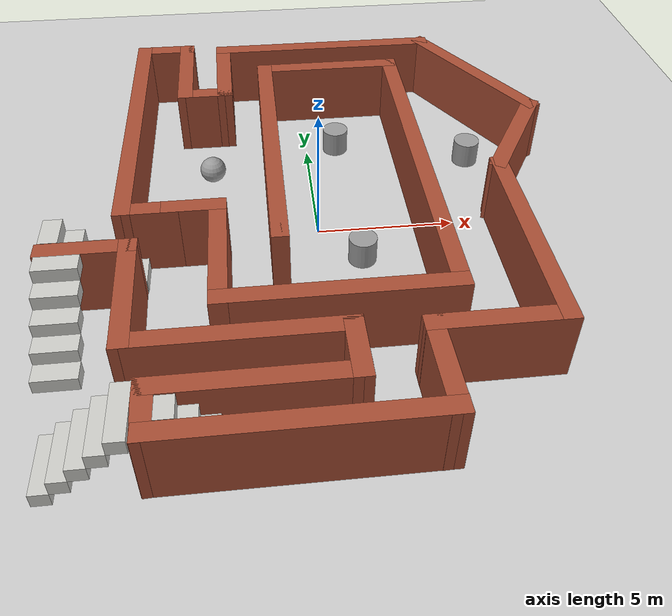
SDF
<sdf version="1.7">
 <world name="default">
  <light name="sun" type="directional">
   <pose>0 0 10 0 -0 0</pose>
   <diffuse>0.8 0.8 0.8 1</diffuse>
   <specular>0.2 0.2 0.2 1</specular>
   <attenuation>
    <range>1000</range>
    <constant>0.9</constant>
    <linear>0.01</linear>
    <quadratic>0.001</quadratic>
   </attenuation>
   <direction>-0.5 0.1 -0.9</direction>
   <spot><inner_angle>0</inner_angle><outer_angle>0</outer_angle><falloff>0</falloff></spot>
  </light>
  <model name="ground_plane">
   <static>1</static>
   <link name="link">
    <collision name="collision">
     <geometry><plane><normal>0 0 1</normal><size>100 100</size></plane></geometry>
     <surface>
      <contact><collide_bitmask>65535</collide_bitmask></contact>
      <friction><ode><mu>100</mu><mu2>50</mu2></ode></friction>
     </surface>
    </collision>
    <visual name="visual">
     <cast_shadows>0</cast_shadows>
     <geometry><plane><normal>0 0 1</normal><size>100 100</size></plane></geometry>
     <material>
      <script><uri>file://media/materials/scripts/gazebo.material</uri><name>Gazebo/Grey</name></script>
     </material>
    </visual>
   </link>
  </model>
  <gravity>0 0 -9.8</gravity>
  <magnetic_field>6e-06 2.3e-05 -4.2e-05</magnetic_field>
  <atmosphere type="adiabatic"/>
  <physics type="ode">
   <max_step_size>0.001</max_step_size>
   <real_time_factor>1</real_time_factor>
   <real_time_update_rate>1000</real_time_update_rate>
  </physics>
  <scene><ambient>0.4 0.4 0.4 1</ambient><background>0.7 0.7 0.7 1</background><shadows>1</shadows></scene>
  <spherical_coordinates>
   <surface_model>EARTH_WGS84</surface_model>
   <latitude_deg>0</latitude_deg>
   <longitude_deg>0</longitude_deg>
   <elevation>0</elevation>
   <heading_deg>0</heading_deg>
  </spherical_coordinates>
  <model name="env1">
   <pose>-0.009799 0.06639 0 0 -0 0</pose>
   <link name="Stairs_12">
    <visual name="Stairs_12_Visual_0">
     <pose>-8.49588 -6.1434 0.25 0 0 -3.14159</pose>
     <geometry><box><size>1.43535 0.656 0.5</size></box></geometry>
     <material>
      <script><uri>file://media/materials/scripts/gazebo.material</uri><name>Gazebo/CeilingTiled</name></script>
      <ambient>1 1 1 1</ambient>
     </material>
     <meta><layer>0</layer></meta>
    </visual>
    <collision name="Stairs_12_Collision_0">
     <geometry><box><size>1.43535 0.656 0.5</size></box></geometry>
     <pose>-8.49588 -6.1434 0.25 0 0 -3.14159</pose>
    </collision>
    <visual name="Stairs_12_Visual_1">
     <pose>-8.49588 -5.4874 0.75 0 0 -3.14159</pose>
     <geometry><box><size>1.43535 0.656 0.5</size></box></geometry>
     <material>
      <script><uri>file://media/materials/scripts/gazebo.material</uri><name>Gazebo/CeilingTiled</name></script>
      <ambient>1 1 1 1</ambient>
     </material>
     <meta><layer>0</layer></meta>
    </visual>
    <collision name="Stairs_12_Collision_1">
     <geometry><box><size>1.43535 0.656 0.5</size></box></geometry>
     <pose>-8.49588 -5.4874 0.75 0 0 -3.14159</pose>
    </collision>
    <visual name="Stairs_12_Visual_2">
     <pose>-8.49588 -4.8314 1.25 0 0 -3.14159</pose>
     <geometry><box><size>1.43535 0.656 0.5</size></box></geometry>
     <material>
      <script><uri>file://media/materials/scripts/gazebo.material</uri><name>Gazebo/CeilingTiled</name></script>
      <ambient>1 1 1 1</ambient>
     </material>
     <meta><layer>0</layer></meta>
    </visual>
    <collision name="Stairs_12_Collision_2">
     <geometry><box><size>1.43535 0.656 0.5</size></box></geometry>
     <pose>-8.49588 -4.8314 1.25 0 0 -3.14159</pose>
    </collision>
    <visual name="Stairs_12_Visual_3">
     <pose>-8.49588 -4.1754 1.75 0 0 -3.14159</pose>
     <geometry><box><size>1.43535 0.656 0.5</size></box></geometry>
     <material>
      <script><uri>file://media/materials/scripts/gazebo.material</uri><name>Gazebo/CeilingTiled</name></script>
      <ambient>1 1 1 1</ambient>
     </material>
     <meta><layer>0</layer></meta>
    </visual>
    <collision name="Stairs_12_Collision_3">
     <geometry><box><size>1.43535 0.656 0.5</size></box></geometry>
     <pose>-8.49588 -4.1754 1.75 0 0 -3.14159</pose>
    </collision>
    <visual name="Stairs_12_Visual_4">
     <pose>-8.49588 -3.5194 2.25 0 0 -3.14159</pose>
     <geometry><box><size>1.43535 0.656 0.5</size></box></geometry>
     <material>
      <script><uri>file://media/materials/scripts/gazebo.material</uri><name>Gazebo/CeilingTiled</name></script>
      <ambient>1 1 1 1</ambient>
     </material>
     <meta><layer>0</layer></meta>
    </visual>
    <collision name="Stairs_12_Collision_4">
     <geometry><box><size>1.43535 0.656 0.5</size></box></geometry>
     <pose>-8.49588 -3.5194 2.25 0 0 -3.14159</pose>
    </collision>
   </link>
   <link name="Stairs_14">
    <visual name="Stairs_14_Visual_0">
     <pose>-8.31245 -9.26996 0.25 0 -0 1.5708</pose>
     <geometry><box><size>1.85785 0.565722 0.5</size></box></geometry>
     <material>
      <script><uri>file://media/materials/scripts/gazebo.material</uri><name>Gazebo/CeilingTiled</name></script>
      <ambient>1 1 1 1</ambient>
     </material>
     <meta><layer>0</layer></meta>
    </visual>
    <collision name="Stairs_14_Collision_0">
     <geometry><box><size>1.85785 0.565722 0.5</size></box></geometry>
     <pose>-8.31245 -9.26996 0.25 0 -0 1.5708</pose>
    </collision>
    <visual name="Stairs_14_Visual_1">
     <pose>-7.74673 -9.26996 0.75 0 -0 1.5708</pose>
     <geometry><box><size>1.85785 0.565722 0.5</size></box></geometry>
     <material>
      <script><uri>file://media/materials/scripts/gazebo.material</uri><name>Gazebo/CeilingTiled</name></script>
      <ambient>1 1 1 1</ambient>
     </material>
     <meta><layer>0</layer></meta>
    </visual>
    <collision name="Stairs_14_Collision_1">
     <geometry><box><size>1.85785 0.565722 0.5</size></box></geometry>
     <pose>-7.74673 -9.26996 0.75 0 -0 1.5708</pose>
    </collision>
    <visual name="Stairs_14_Visual_2">
     <pose>-7.181 -9.26996 1.25 0 -0 1.5708</pose>
     <geometry><box><size>1.85785 0.565722 0.5</size></box></geometry>
     <material>
      <script><uri>file://media/materials/scripts/gazebo.material</uri><name>Gazebo/CeilingTiled</name></script>
      <ambient>1 1 1 1</ambient>
     </material>
     <meta><layer>0</layer></meta>
    </visual>
    <collision name="Stairs_14_Collision_2">
     <geometry><box><size>1.85785 0.565722 0.5</size></box></geometry>
     <pose>-7.181 -9.26996 1.25 0 -0 1.5708</pose>
    </collision>
    <visual name="Stairs_14_Visual_3">
     <pose>-6.61528 -9.26996 1.75 0 -0 1.5708</pose>
     <geometry><box><size>1.85785 0.565722 0.5</size></box></geometry>
     <material>
      <script><uri>file://media/materials/scripts/gazebo.material</uri><name>Gazebo/CeilingTiled</name></script>
      <ambient>1 1 1 1</ambient>
     </material>
     <meta><layer>0</layer></meta>
    </visual>
    <collision name="Stairs_14_Collision_3">
     <geometry><box><size>1.85785 0.565722 0.5</size></box></geometry>
     <pose>-6.61528 -9.26996 1.75 0 -0 1.5708</pose>
    </collision>
    <visual name="Stairs_14_Visual_4">
     <pose>-6.04956 -9.26996 2.25 0 -0 1.5708</pose>
     <geometry><box><size>1.85785 0.565722 0.5</size></box></geometry>
     <material>
      <script><uri>file://media/materials/scripts/gazebo.material</uri><name>Gazebo/CeilingTiled</name></script>
      <ambient>1 1 1 1</ambient>
     </material>
     <meta><layer>0</layer></meta>
    </visual>
    <collision name="Stairs_14_Collision_4">
     <geometry><box><size>1.85785 0.565722 0.5</size></box></geometry>
     <pose>-6.04956 -9.26996 2.25 0 -0 1.5708</pose>
    </collision>
   </link>
   <link name="Stairs_16">
    <visual name="Stairs_16_Visual_0">
     <pose>-2.64164 -9.26222 0.25 0 0 -1.5708</pose>
     <geometry><box><size>0.774826 0.559952 0.5</size></box></geometry>
     <material>
      <script><uri>file://media/materials/scripts/gazebo.material</uri><name>Gazebo/CeilingTiled</name></script>
      <ambient>1 1 1 1</ambient>
     </material>
     <meta><layer>0</layer></meta>
    </visual>
    <collision name="Stairs_16_Collision_0">
     <geometry><box><size>0.774826 0.559952 0.5</size></box></geometry>
     <pose>-2.64164 -9.26222 0.25 0 0 -1.5708</pose>
    </collision>
    <visual name="Stairs_16_Visual_1">
     <pose>-3.2016 -9.26222 0.75 0 0 -1.5708</pose>
     <geometry><box><size>0.774826 0.559952 0.5</size></box></geometry>
     <material>
      <script><uri>file://media/materials/scripts/gazebo.material</uri><name>Gazebo/CeilingTiled</name></script>
      <ambient>1 1 1 1</ambient>
     </material>
     <meta><layer>0</layer></meta>
    </visual>
    <collision name="Stairs_16_Collision_1">
     <geometry><box><size>0.774826 0.559952 0.5</size></box></geometry>
     <pose>-3.2016 -9.26222 0.75 0 0 -1.5708</pose>
    </collision>
    <visual name="Stairs_16_Visual_2">
     <pose>-3.76155 -9.26222 1.25 0 0 -1.5708</pose>
     <geometry><box><size>0.774826 0.559952 0.5</size></box></geometry>
     <material>
      <script><uri>file://media/materials/scripts/gazebo.material</uri><name>Gazebo/CeilingTiled</name></script>
      <ambient>1 1 1 1</ambient>
     </material>
     <meta><layer>0</layer></meta>
    </visual>
    <collision name="Stairs_16_Collision_2">
     <geometry><box><size>0.774826 0.559952 0.5</size></box></geometry>
     <pose>-3.76155 -9.26222 1.25 0 0 -1.5708</pose>
    </collision>
    <visual name="Stairs_16_Visual_3">
     <pose>-4.3215 -9.26222 1.75 0 0 -1.5708</pose>
     <geometry><box><size>0.774826 0.559952 0.5</size></box></geometry>
     <material>
      <script><uri>file://media/materials/scripts/gazebo.material</uri><name>Gazebo/CeilingTiled</name></script>
      <ambient>1 1 1 1</ambient>
     </material>
     <meta><layer>0</layer></meta>
    </visual>
    <collision name="Stairs_16_Collision_3">
     <geometry><box><size>0.774826 0.559952 0.5</size></box></geometry>
     <pose>-4.3215 -9.26222 1.75 0 0 -1.5708</pose>
    </collision>
    <visual name="Stairs_16_Visual_4">
     <pose>-4.88145 -9.26222 2.25 0 0 -1.5708</pose>
     <geometry><box><size>0.774826 0.559952 0.5</size></box></geometry>
     <material>
      <script><uri>file://media/materials/scripts/gazebo.material</uri><name>Gazebo/CeilingTiled</name></script>
      <ambient>1 1 1 1</ambient>
     </material>
     <meta><layer>0</layer></meta>
    </visual>
    <collision name="Stairs_16_Collision_4">
     <geometry><box><size>0.774826 0.559952 0.5</size></box></geometry>
     <pose>-4.88145 -9.26222 2.25 0 0 -1.5708</pose>
    </collision>
   </link>
   <link name="Stairs_4">
    <visual name="Stairs_4_Visual_0">
     <pose>-6.34223 -2.01267 0.25 0 0 -1.5708</pose>
     <geometry><box><size>1.17 0.636856 0.5</size></box></geometry>
     <material>
      <script><uri>file://media/materials/scripts/gazebo.material</uri><name>Gazebo/CeilingTiled</name></script>
      <ambient>1 1 1 1</ambient>
     </material>
     <meta><layer>0</layer></meta>
    </visual>
    <collision name="Stairs_4_Collision_0">
     <geometry><box><size>1.17 0.636856 0.5</size></box></geometry>
     <pose>-6.34223 -2.01267 0.25 0 0 -1.5708</pose>
    </collision>
    <visual name="Stairs_4_Visual_1">
     <pose>-6.97909 -2.01267 0.75 0 0 -1.5708</pose>
     <geometry><box><size>1.17 0.636856 0.5</size></box></geometry>
     <material>
      <script><uri>file://media/materials/scripts/gazebo.material</uri><name>Gazebo/CeilingTiled</name></script>
      <ambient>1 1 1 1</ambient>
     </material>
     <meta><layer>0</layer></meta>
    </visual>
    <collision name="Stairs_4_Collision_1">
     <geometry><box><size>1.17 0.636856 0.5</size></box></geometry>
     <pose>-6.97909 -2.01267 0.75 0 0 -1.5708</pose>
    </collision>
    <visual name="Stairs_4_Visual_2">
     <pose>-7.61594 -2.01267 1.25 0 0 -1.5708</pose>
     <geometry><box><size>1.17 0.636856 0.5</size></box></geometry>
     <material>
      <script><uri>file://media/materials/scripts/gazebo.material</uri><name>Gazebo/CeilingTiled</name></script>
      <ambient>1 1 1 1</ambient>
     </material>
     <meta><layer>0</layer></meta>
    </visual>
    <collision name="Stairs_4_Collision_2">
     <geometry><box><size>1.17 0.636856 0.5</size></box></geometry>
     <pose>-7.61594 -2.01267 1.25 0 0 -1.5708</pose>
    </collision>
    <visual name="Stairs_4_Visual_3">
     <pose>-8.2528 -2.01267 1.75 0 0 -1.5708</pose>
     <geometry><box><size>1.17 0.636856 0.5</size></box></geometry>
     <material>
      <script><uri>file://media/materials/scripts/gazebo.material</uri><name>Gazebo/CeilingTiled</name></script>
      <ambient>1 1 1 1</ambient>
     </material>
     <meta><layer>0</layer></meta>
    </visual>
    <collision name="Stairs_4_Collision_3">
     <geometry><box><size>1.17 0.636856 0.5</size></box></geometry>
     <pose>-8.2528 -2.01267 1.75 0 0 -1.5708</pose>
    </collision>
    <visual name="Stairs_4_Visual_4">
     <pose>-8.88966 -2.01267 2.25 0 0 -1.5708</pose>
     <geometry><box><size>1.17 0.636856 0.5</size></box></geometry>
     <material>
      <script><uri>file://media/materials/scripts/gazebo.material</uri><name>Gazebo/CeilingTiled</name></script>
      <ambient>1 1 1 1</ambient>
     </material>
     <meta><layer>0</layer></meta>
    </visual>
    <collision name="Stairs_4_Collision_4">
     <geometry><box><size>1.17 0.636856 0.5</size></box></geometry>
     <pose>-8.88966 -2.01267 2.25 0 0 -1.5708</pose>
    </collision>
   </link>
   <link name="Wall_0">
    <collision name="Wall_0_Collision">
     <geometry><box><size>2.25 0.15 2.5</size></box></geometry>
     <pose>0 0 1.25 0 -0 0</pose>
    </collision>
    <visual name="Wall_0_Visual">
     <pose>0 0 1.25 0 -0 0</pose>
     <geometry><box><size>2.25 0.15 2.5</size></box></geometry>
     <material>
      <script><uri>file://media/materials/scripts/gazebo.material</uri><name>Gazebo/Bricks</name></script>
      <ambient>1 1 1 1</ambient>
     </material>
     <meta><layer>0</layer></meta>
    </visual>
    <pose>-1.5142 -1.67692 0 0 -0 -1.57071</pose>
   </link>
   <link name="Wall_1">
    <collision name="Wall_1_Collision">
     <geometry><box><size>11.2 0.6 2.5</size></box></geometry>
     <pose>0 0 1.25 0 -0 0</pose>
    </collision>
    <visual name="Wall_1_Visual">
     <pose>0 0 1.25 0 -0 0</pose>
     <geometry><box><size>11.2 0.6 2.5</size></box></geometry>
     <material>
      <script><uri>file://media/materials/scripts/gazebo.material</uri><name>Gazebo/Bricks</name></script>
      <ambient>0.996078 0.47451 0.0196078 1</ambient>
     </material>
     <meta><layer>0</layer></meta>
    </visual>
    <pose>-1.51411 2.57286 0 0 -0 1.5708</pose>
   </link>
   <link name="Wall_10">
    <collision name="Wall_10_Collision">
     <geometry><box><size>4.45027 0.6 2.5</size></box></geometry>
     <pose>0 0 1.25 0 -0 0</pose>
    </collision>
    <visual name="Wall_10_Visual">
     <pose>0 0 1.25 0 -0 0</pose>
     <geometry><box><size>4.45027 0.6 2.5</size></box></geometry>
     <material>
      <script><uri>file://media/materials/scripts/gazebo.material</uri><name>Gazebo/Bricks</name></script>
      <ambient>0.996078 0.47451 0.0196078 1</ambient>
     </material>
     <meta><layer>0</layer></meta>
    </visual>
    <pose>-4.83111 8.04786 0 0 -0 -1.56404</pose>
   </link>
   <link name="Wall_11">
    <collision name="Wall_11_Collision">
     <geometry><box><size>2.201 0.6 2.5</size></box></geometry>
     <pose>0 0 1.25 0 -0 0</pose>
    </collision>
    <visual name="Wall_11_Visual">
     <pose>0 0 1.25 0 -0 0</pose>
     <geometry><box><size>2.201 0.6 2.5</size></box></geometry>
     <material>
      <script><uri>file://media/materials/scripts/gazebo.material</uri><name>Gazebo/Bricks</name></script>
      <ambient>0.996078 0.47451 0.0196078 1</ambient>
     </material>
     <meta><layer>0</layer></meta>
    </visual>
    <pose>-4.01767 6.12286 0 0 -0 0</pose>
   </link>
   <link name="Wall_12">
    <collision name="Wall_12_Collision">
     <geometry><box><size>4.20014 0.6 2.5</size></box></geometry>
     <pose>0 0 1.25 0 -0 0</pose>
    </collision>
    <visual name="Wall_12_Visual">
     <pose>0 0 1.25 0 -0 0</pose>
     <geometry><box><size>4.20014 0.6 2.5</size></box></geometry>
     <material>
      <script><uri>file://media/materials/scripts/gazebo.material</uri><name>Gazebo/Bricks</name></script>
      <ambient>0.996078 0.47451 0.0196078 1</ambient>
     </material>
     <meta><layer>0</layer></meta>
    </visual>
    <pose>-3.24067 7.92286 0 0 -0 1.58382</pose>
   </link>
   <link name="Wall_13">
    <collision name="Wall_13_Collision">
     <geometry><box><size>9.45 0.6 2.5</size></box></geometry>
     <pose>0 0 1.25 0 -0 0</pose>
    </collision>
    <visual name="Wall_13_Visual">
     <pose>0 0 1.25 0 -0 0</pose>
     <geometry><box><size>9.45 0.6 2.5</size></box></geometry>
     <material>
      <script><uri>file://media/materials/scripts/gazebo.material</uri><name>Gazebo/Bricks</name></script>
      <ambient>0.996078 0.47451 0.0196078 1</ambient>
     </material>
     <meta><layer>0</layer></meta>
    </visual>
    <pose>1.16089 9.72286 0 0 -0 0</pose>
   </link>
   <link name="Wall_14">
    <collision name="Wall_14_Collision">
     <geometry><box><size>7.19933 0.6 2.5</size></box></geometry>
     <pose>0 0 1.25 0 -0 0</pose>
    </collision>
    <visual name="Wall_14_Visual">
     <pose>0 0 1.25 0 -0 0</pose>
     <geometry><box><size>7.19933 0.6 2.5</size></box></geometry>
     <material>
      <script><uri>file://media/materials/scripts/gazebo.material</uri><name>Gazebo/Bricks</name></script>
      <ambient>0.996078 0.47451 0.0196078 1</ambient>
     </material>
     <meta><layer>0</layer></meta>
    </visual>
    <pose>7.23589 6.86536 0 0 -0 -1.04714</pose>
   </link>
   <link name="Wall_15">
    <collision name="Wall_15_Collision">
     <geometry><box><size>5.00619 0.6 2.5</size></box></geometry>
     <pose>0 0 1.25 0 -0 0</pose>
    </collision>
    <visual name="Wall_15_Visual">
     <pose>0 0 1.25 0 -0 0</pose>
     <geometry><box><size>5.00619 0.6 2.5</size></box></geometry>
     <material>
      <script><uri>file://media/materials/scripts/gazebo.material</uri><name>Gazebo/Bricks</name></script>
      <ambient>0.996078 0.47451 0.0196078 1</ambient>
     </material>
     <meta><layer>0</layer></meta>
    </visual>
    <pose>7.74389 2.12386 0 0 -0 -2.11573</pose>
   </link>
   <link name="Wall_16">
    <collision name="Wall_16_Collision">
     <geometry><box><size>7.95 0.6 2.5</size></box></geometry>
     <pose>0 0 1.25 0 -0 0</pose>
    </collision>
    <visual name="Wall_16_Visual">
     <pose>0 0 1.25 0 -0 0</pose>
     <geometry><box><size>7.95 0.6 2.5</size></box></geometry>
     <material>
      <script><uri>file://media/materials/scripts/gazebo.material</uri><name>Gazebo/Bricks</name></script>
      <ambient>0.996078 0.47451 0.0196078 1</ambient>
     </material>
     <meta><layer>0</layer></meta>
    </visual>
    <pose>6.60189 -3.43514 0 0 -0 -1.5708</pose>
   </link>
   <link name="Wall_17">
    <collision name="Wall_17_Collision">
     <geometry><box><size>4.591 0.6 2.5</size></box></geometry>
     <pose>0 0 1.25 0 -0 0</pose>
    </collision>
    <visual name="Wall_17_Visual">
     <pose>0 0 1.25 0 -0 0</pose>
     <geometry><box><size>4.591 0.6 2.5</size></box></geometry>
     <material>
      <script><uri>file://media/materials/scripts/gazebo.material</uri><name>Gazebo/Bricks</name></script>
      <ambient>0.996078 0.47451 0.0196078 1</ambient>
     </material>
     <meta><layer>0</layer></meta>
    </visual>
    <pose>4.60639 -7.11014 0 0 -0 3.14159</pose>
   </link>
   <link name="Wall_18">
    <collision name="Wall_18_Collision">
     <geometry><box><size>3.45091 0.6 2.5</size></box></geometry>
     <pose>0 0 1.25 0 -0 0</pose>
    </collision>
    <visual name="Wall_18_Visual">
     <pose>0 0 1.25 0 -0 0</pose>
     <geometry><box><size>3.45091 0.6 2.5</size></box></geometry>
     <material>
      <script><uri>file://media/materials/scripts/gazebo.material</uri><name>Gazebo/Bricks</name></script>
      <ambient>0.996078 0.47451 0.0196078 1</ambient>
     </material>
     <meta><layer>0</layer></meta>
    </visual>
    <pose>2.64689 -8.53514 0 0 -0 -1.54554</pose>
   </link>
   <link name="Wall_19">
    <collision name="Wall_19_Collision">
     <geometry><box><size>8.70003 0.6 2.5</size></box></geometry>
     <pose>0 0 1.25 0 -0 0</pose>
    </collision>
    <visual name="Wall_19_Visual">
     <pose>0 0 1.25 0 -0 0</pose>
     <geometry><box><size>8.70003 0.6 2.5</size></box></geometry>
     <material>
      <script><uri>file://media/materials/scripts/gazebo.material</uri><name>Gazebo/Bricks</name></script>
      <ambient>0.996078 0.47451 0.0196078 1</ambient>
     </material>
     <meta><layer>0</layer></meta>
    </visual>
    <pose>-1.36711 -9.96014 0 0 -0 3.14159</pose>
   </link>
   <link name="Wall_2">
    <collision name="Wall_2_Collision">
     <geometry><box><size>5.95 0.6 2.5</size></box></geometry>
     <pose>0 0 1.25 0 -0 0</pose>
    </collision>
    <visual name="Wall_2_Visual">
     <pose>0 0 1.25 0 -0 0</pose>
     <geometry><box><size>5.95 0.6 2.5</size></box></geometry>
     <material>
      <script><uri>file://media/materials/scripts/gazebo.material</uri><name>Gazebo/Bricks</name></script>
      <ambient>0.996078 0.47451 0.0196078 1</ambient>
     </material>
     <meta><layer>0</layer></meta>
    </visual>
    <pose>1.16089 7.87286 0 0 -0 0</pose>
   </link>
   <link name="Wall_20">
    <collision name="Wall_20_Collision">
     <geometry><box><size>2.02001 0.6 2.5</size></box></geometry>
     <pose>0 0 1.25 0 -0 0</pose>
    </collision>
    <visual name="Wall_20_Visual">
     <pose>0 0 1.25 0 -0 0</pose>
     <geometry><box><size>2.02001 0.6 2.5</size></box></geometry>
     <material>
      <script><uri>file://media/materials/scripts/gazebo.material</uri><name>Gazebo/Bricks</name></script>
      <ambient>0.996078 0.47451 0.0196078 1</ambient>
     </material>
     <meta><layer>0</layer></meta>
    </visual>
    <pose>-5.45311 -9.25105 0 0 -0 1.62152</pose>
   </link>
   <link name="Wall_21">
    <collision name="Wall_21_Collision">
     <geometry><box><size>6.45 0.6 2.5</size></box></geometry>
     <pose>0 0 1.25 0 -0 0</pose>
    </collision>
    <visual name="Wall_21_Visual">
     <pose>0 0 1.25 0 -0 0</pose>
     <geometry><box><size>6.45 0.6 2.5</size></box></geometry>
     <material>
      <script><uri>file://media/materials/scripts/gazebo.material</uri><name>Gazebo/Bricks</name></script>
      <ambient>0.996078 0.47451 0.0196078 1</ambient>
     </material>
     <meta><layer>0</layer></meta>
    </visual>
    <pose>-2.56411 -8.54196 0 0 -0 0</pose>
   </link>
   <link name="Wall_22">
    <collision name="Wall_22_Collision">
     <geometry><box><size>2.24196 0.6 2.5</size></box></geometry>
     <pose>0 0 1.25 0 -0 0</pose>
    </collision>
    <visual name="Wall_22_Visual">
     <pose>0 0 1.25 0 -0 0</pose>
     <geometry><box><size>2.24196 0.6 2.5</size></box></geometry>
     <material>
      <script><uri>file://media/materials/scripts/gazebo.material</uri><name>Gazebo/Bricks</name></script>
      <ambient>0.996078 0.47451 0.0196078 1</ambient>
     </material>
     <meta><layer>0</layer></meta>
    </visual>
    <pose>0.354718 -7.721 0 0 -0 1.57831</pose>
   </link>
   <link name="Wall_23">
    <collision name="Wall_23_Collision">
     <geometry><box><size>7.2 0.6 2.5</size></box></geometry>
     <pose>0 0 1.25 0 -0 0</pose>
    </collision>
    <visual name="Wall_23_Visual">
     <pose>0 0 1.25 0 -0 0</pose>
     <geometry><box><size>7.2 0.6 2.5</size></box></geometry>
     <material>
      <script><uri>file://media/materials/scripts/gazebo.material</uri><name>Gazebo/Bricks</name></script>
      <ambient>0.996078 0.47451 0.0196078 1</ambient>
     </material>
     <meta><layer>0</layer></meta>
    </visual>
    <pose>-2.95145 -6.90005 0 0 -0 3.14159</pose>
   </link>
   <link name="Wall_24">
    <collision name="Wall_24_Collision">
     <geometry><box><size>4.59107 0.6 2.5</size></box></geometry>
     <pose>0 0 1.25 0 -0 0</pose>
    </collision>
    <visual name="Wall_24_Visual">
     <pose>0 0 1.25 0 -0 0</pose>
     <geometry><box><size>4.59107 0.6 2.5</size></box></geometry>
     <material>
      <script><uri>file://media/materials/scripts/gazebo.material</uri><name>Gazebo/Bricks</name></script>
      <ambient>0.996078 0.47451 0.0196078 1</ambient>
     </material>
     <meta><layer>0</layer></meta>
    </visual>
    <pose>-6.2997 -4.9051 0 0 -0 1.59498</pose>
   </link>
   <link name="Wall_25">
    <collision name="Wall_25_Collision">
     <geometry><box><size>3.25 0.6 2.5</size></box></geometry>
     <pose>0 0 1.25 0 -0 0</pose>
    </collision>
    <visual name="Wall_25_Visual">
     <pose>0 0 1.25 0 -0 0</pose>
     <geometry><box><size>3.25 0.6 2.5</size></box></geometry>
     <material>
      <script><uri>file://media/materials/scripts/gazebo.material</uri><name>Gazebo/Bricks</name></script>
      <ambient>0.996078 0.47451 0.0196078 1</ambient>
     </material>
     <meta><layer>0</layer></meta>
    </visual>
    <pose>-7.67295 -2.91014 0 0 -0 3.14159</pose>
   </link>
   <link name="Wall_3">
    <collision name="Wall_3_Collision">
     <geometry><box><size>13.95 0.6 2.5</size></box></geometry>
     <pose>0 0 1.25 0 -0 0</pose>
    </collision>
    <visual name="Wall_3_Visual">
     <pose>0 0 1.25 0 -0 0</pose>
     <geometry><box><size>13.95 0.6 2.5</size></box></geometry>
     <material>
      <script><uri>file://media/materials/scripts/gazebo.material</uri><name>Gazebo/Bricks</name></script>
      <ambient>0.996078 0.47451 0.0196078 1</ambient>
     </material>
     <meta><layer>0</layer></meta>
    </visual>
    <pose>3.83589 1.19786 0 0 -0 -1.5708</pose>
   </link>
   <link name="Wall_4">
    <collision name="Wall_4_Collision">
     <geometry><box><size>7.95 0.6 2.5</size></box></geometry>
     <pose>0 0 1.25 0 -0 0</pose>
    </collision>
    <visual name="Wall_4_Visual">
     <pose>0 0 1.25 0 -0 0</pose>
     <geometry><box><size>7.95 0.6 2.5</size></box></geometry>
     <material>
      <script><uri>file://media/materials/scripts/gazebo.material</uri><name>Gazebo/Bricks</name></script>
      <ambient>0.996078 0.47451 0.0196078 1</ambient>
     </material>
     <meta><layer>0</layer></meta>
    </visual>
    <pose>0.16089 -5.47714 0 0 -0 3.14159</pose>
   </link>
   <link name="Wall_5">
    <collision name="Wall_5_Collision">
     <geometry><box><size>4.95 0.6 2.5</size></box></geometry>
     <pose>0 0 1.25 0 -0 0</pose>
    </collision>
    <visual name="Wall_5_Visual">
     <pose>0 0 1.25 0 -0 0</pose>
     <geometry><box><size>4.95 0.6 2.5</size></box></geometry>
     <material>
      <script><uri>file://media/materials/scripts/gazebo.material</uri><name>Gazebo/Bricks</name></script>
      <ambient>0.996078 0.47451 0.0196078 1</ambient>
     </material>
     <meta><layer>0</layer></meta>
    </visual>
    <pose>-3.51411 -3.30214 0 0 -0 1.5708</pose>
   </link>
   <link name="Wall_6">
    <collision name="Wall_6_Collision">
     <geometry><box><size>2.2 0.6 2.5</size></box></geometry>
     <pose>0 0 1.25 0 -0 0</pose>
    </collision>
    <visual name="Wall_6_Visual">
     <pose>0 0 1.25 0 -0 0</pose>
     <geometry><box><size>2.2 0.6 2.5</size></box></geometry>
     <material>
      <script><uri>file://media/materials/scripts/gazebo.material</uri><name>Gazebo/Bricks</name></script>
      <ambient>0.996078 0.47451 0.0196078 1</ambient>
     </material>
     <meta><layer>0</layer></meta>
    </visual>
    <pose>-4.31411 -1.12714 0 0 -0 3.14159</pose>
   </link>
   <link name="Wall_7">
    <collision name="Wall_7_Collision">
     <geometry><box><size>2.2 0.6 2.5</size></box></geometry>
     <pose>0 0 1.25 0 -0 0</pose>
    </collision>
    <visual name="Wall_7_Visual">
     <pose>0 0 1.25 0 -0 0</pose>
     <geometry><box><size>2.2 0.6 2.5</size></box></geometry>
     <material>
      <script><uri>file://media/materials/scripts/gazebo.material</uri><name>Gazebo/Bricks</name></script>
      <ambient>0.996078 0.47451 0.0196078 1</ambient>
     </material>
     <meta><layer>0</layer></meta>
    </visual>
    <pose>-5.91411 -1.12714 0 0 -0 3.14159</pose>
   </link>
   <link name="Wall_8">
    <collision name="Wall_8_Collision">
     <geometry><box><size>11.7 0.6 2.5</size></box></geometry>
     <pose>0 0 1.25 0 -0 0</pose>
    </collision>
    <visual name="Wall_8_Visual">
     <pose>0 0 1.25 0 -0 0</pose>
     <geometry><box><size>11.7 0.6 2.5</size></box></geometry>
     <material>
      <script><uri>file://media/materials/scripts/gazebo.material</uri><name>Gazebo/Bricks</name></script>
      <ambient>0.996078 0.47451 0.0196078 1</ambient>
     </material>
     <meta><layer>0</layer></meta>
    </visual>
    <pose>-6.70411 4.42286 0 0 -0 1.56899</pose>
   </link>
   <link name="Wall_9">
    <collision name="Wall_9_Collision">
     <geometry><box><size>2.45046 0.6 2.5</size></box></geometry>
     <pose>0 0 1.25 0 -0 0</pose>
    </collision>
    <visual name="Wall_9_Visual">
     <pose>0 0 1.25 0 -0 0</pose>
     <geometry><box><size>2.45046 0.6 2.5</size></box></geometry>
     <material>
      <script><uri>file://media/materials/scripts/gazebo.material</uri><name>Gazebo/Bricks</name></script>
      <ambient>0.996078 0.47451 0.0196078 1</ambient>
     </material>
     <meta><layer>0</layer></meta>
    </visual>
    <pose>-5.76911 9.97286 0 0 -0 0</pose>
   </link>
   <static>1</static>
  </model>
  <model name="unit_cylinder">
   <pose>1.21693 5.2518 0.499992 -3e-06 -4e-06 -0</pose>
   <link name="link">
    <inertial>
     <mass>1</mass>
     <inertia><ixx>0.145833</ixx><ixy>0</ixy><ixz>0</ixz><iyy>0.145833</iyy><iyz>0</iyz><izz>0.125</izz></inertia>
    </inertial>
    <collision name="collision">
     <geometry><cylinder><radius>0.5</radius><length>1</length></cylinder></geometry>
    </collision>
    <visual name="visual">
     <geometry><cylinder><radius>0.5</radius><length>1</length></cylinder></geometry>
     <material>
      <script><name>Gazebo/Grey</name><uri>file://media/materials/scripts/gazebo.material</uri></script>
     </material>
    </visual>
   </link>
  </model>
  <model name="unit_sphere">
   <pose>-3.85354 3.61745 0.5 0 -0 0</pose>
   <link name="link">
    <inertial>
     <mass>1</mass>
     <inertia><ixx>0.1</ixx><ixy>0</ixy><ixz>0</ixz><iyy>0.1</iyy><iyz>0</iyz><izz>0.1</izz></inertia>
    </inertial>
    <collision name="collision"><geometry><sphere><radius>0.5</radius></sphere></geometry></collision>
    <visual name="visual">
     <geometry><sphere><radius>0.5</radius></sphere></geometry>
     <material>
      <script><name>Gazebo/Grey</name><uri>file://media/materials/scripts/gazebo.material</uri></script>
     </material>
    </visual>
   </link>
  </model>
  <model name="unit_cylinder_0">
   <pose>6.44934 3.90347 0.499997 3e-06 4e-06 -0</pose>
   <link name="link">
    <inertial>
     <mass>1</mass>
     <inertia><ixx>0.145833</ixx><ixy>0</ixy><ixz>0</ixz><iyy>0.145833</iyy><iyz>0</iyz><izz>0.125</izz></inertia>
    </inertial>
    <collision name="collision">
     <geometry><cylinder><radius>0.5</radius><length>1</length></cylinder></geometry>
    </collision>
    <visual name="visual">
     <geometry><cylinder><radius>0.5</radius><length>1</length></cylinder></geometry>
     <material>
      <script><name>Gazebo/Grey</name><uri>file://media/materials/scripts/gazebo.material</uri></script>
     </material>
    </visual>
   </link>
  </model>
  <model name="unit_cylinder_1">
   <pose>1.40292 -1.60326 0.499993 -3e-06 -4e-06 -0</pose>
   <link name="link">
    <inertial>
     <mass>1</mass>
     <inertia><ixx>0.145833</ixx><ixy>0</ixy><ixz>0</ixz><iyy>0.145833</iyy><iyz>0</iyz><izz>0.125</izz></inertia>
    </inertial>
    <collision name="collision">
     <geometry><cylinder><radius>0.5</radius><length>1</length></cylinder></geometry>
    </collision>
    <visual name="visual">
     <geometry><cylinder><radius>0.5</radius><length>1</length></cylinder></geometry>
     <material>
      <script><name>Gazebo/Grey</name><uri>file://media/materials/scripts/gazebo.material</uri></script>
     </material>
    </visual>
   </link>
  </model>
 </world>
</sdf>
